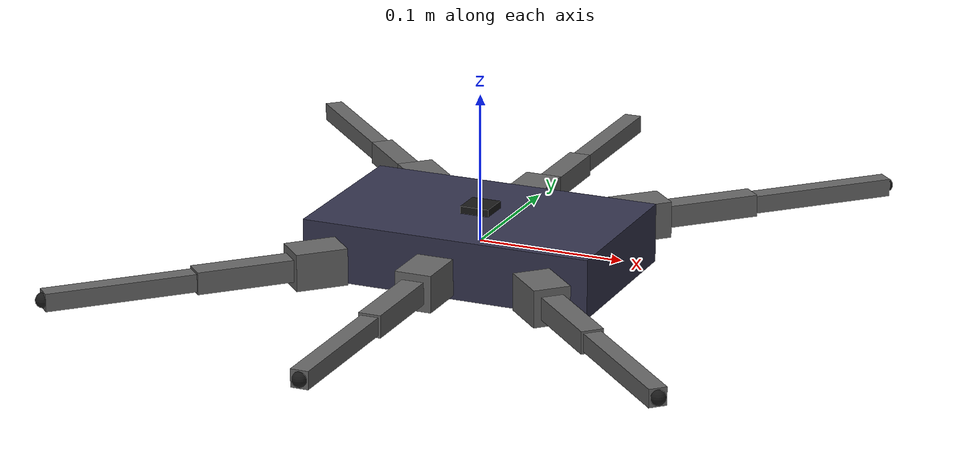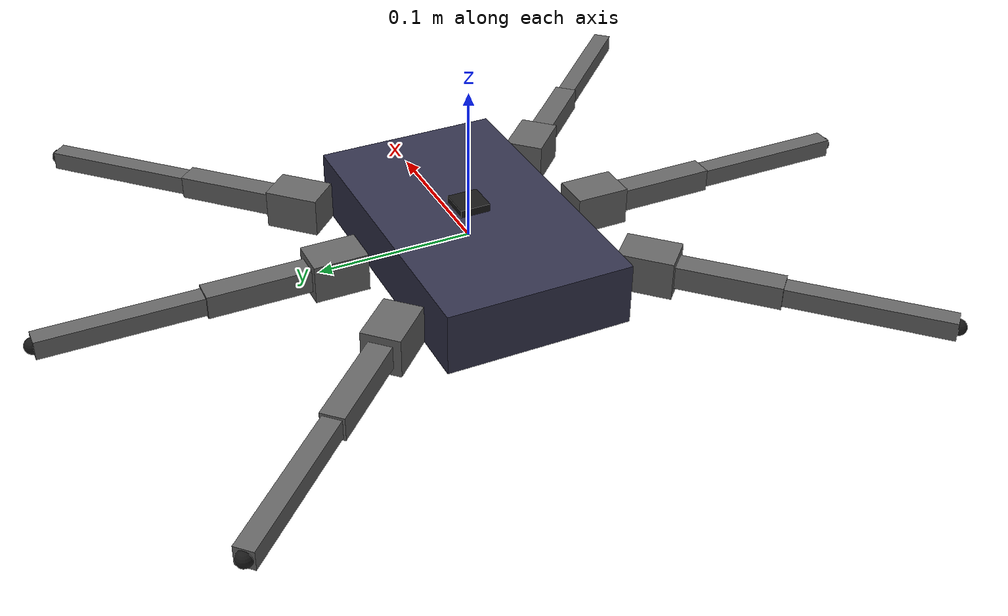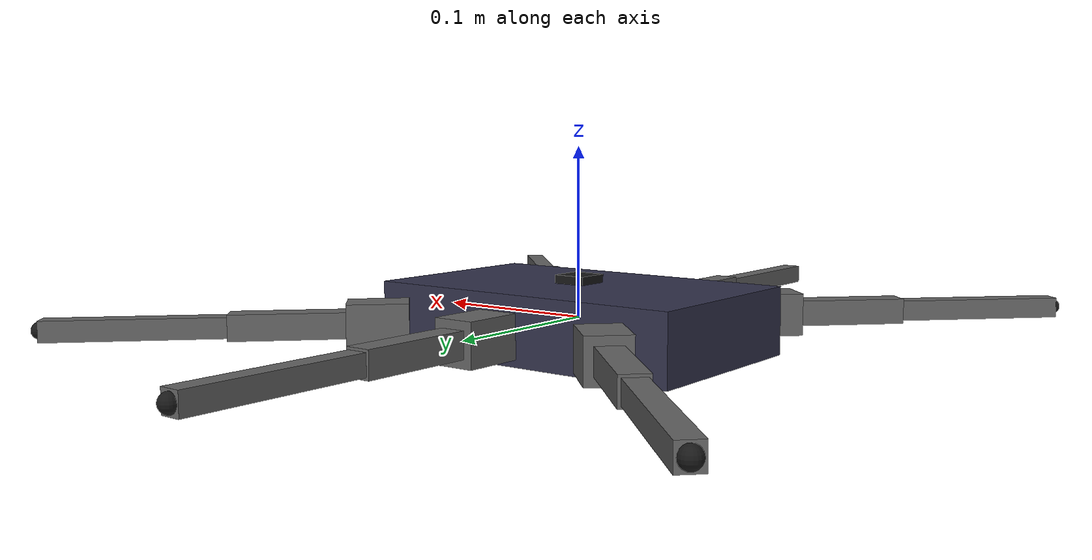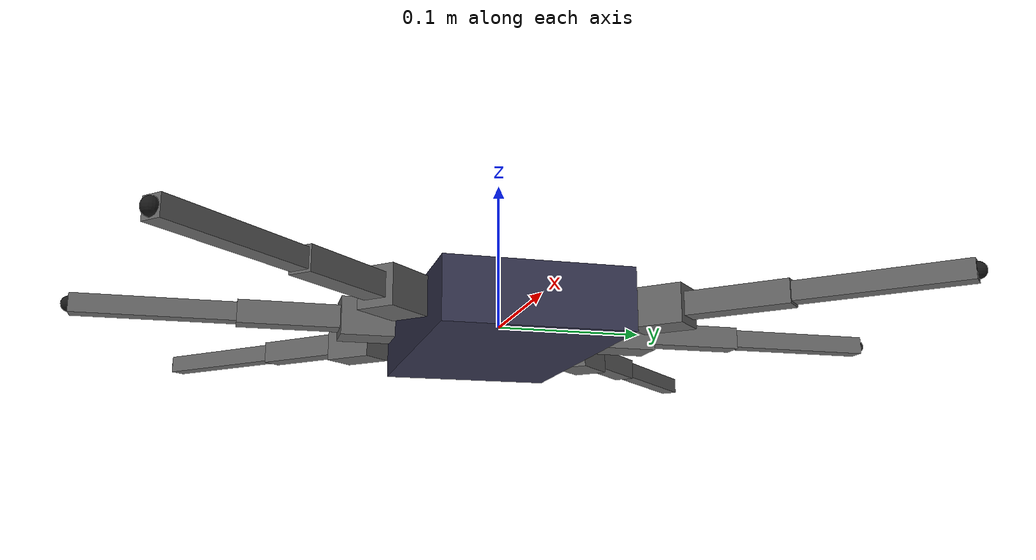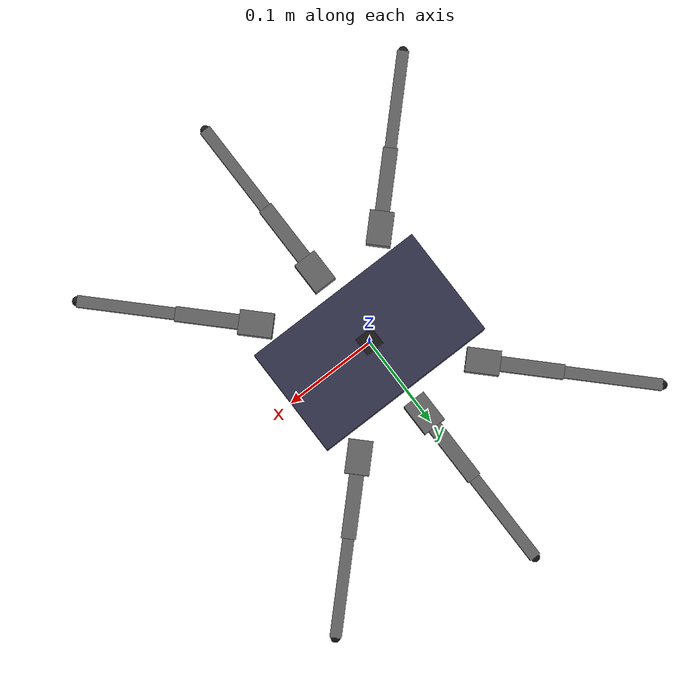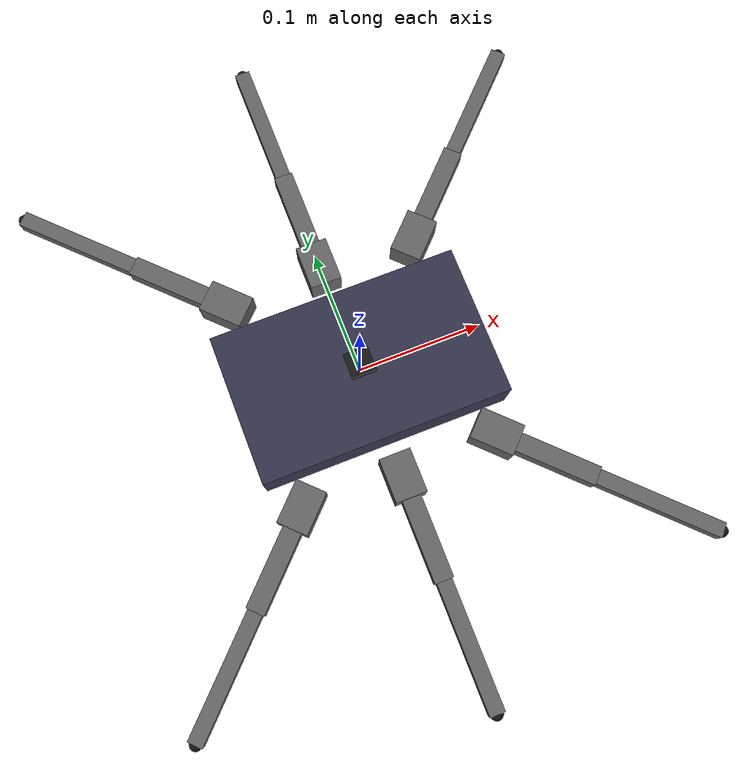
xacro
<?xml version="1.0"?>
<robot xmlns:xacro="http://www.ros.org/wiki/xacro" name="hexapod">

  <!-- Properties -->
  <xacro:property name="body_length" value="0.20"/>
  <xacro:property name="body_width" value="0.12"/>
  <xacro:property name="body_height" value="0.04"/>
  <xacro:property name="body_mass" value="0.8"/>

  <!-- Coxa (hip) dimensions -->
  <xacro:property name="coxa_length" value="0.035"/>
  <xacro:property name="coxa_width" value="0.025"/>
  <xacro:property name="coxa_mass" value="0.05"/>

  <!-- Femur (thigh) dimensions -->
  <xacro:property name="femur_length" value="0.065"/>
  <xacro:property name="femur_width" value="0.015"/>
  <xacro:property name="femur_mass" value="0.08"/>

  <!-- Tibia (shin) dimensions -->
  <xacro:property name="tibia_length" value="0.100"/>
  <xacro:property name="tibia_width" value="0.012"/>
  <xacro:property name="tibia_mass" value="0.06"/>

  <!-- Materials -->
  <material name="body_color">
    <color rgba="0.2 0.2 0.3 1.0"/>
  </material>
  <material name="leg_color">
    <color rgba="0.4 0.4 0.4 1.0"/>
  </material>
  <material name="joint_color">
    <color rgba="0.1 0.1 0.1 1.0"/>
  </material>

  <!-- Base Link -->
  <link name="base_link">
    <visual>
      <origin xyz="0 0 0" rpy="0 0 0"/>
      <geometry>
        <box size="${body_length} ${body_width} ${body_height}"/>
      </geometry>
      <material name="body_color"/>
    </visual>
    <collision>
      <origin xyz="0 0 0" rpy="0 0 0"/>
      <geometry>
        <box size="${body_length} ${body_width} ${body_height}"/>
      </geometry>
    </collision>
    <inertial>
      <origin xyz="0 0 0" rpy="0 0 0"/>
      <mass value="${body_mass}"/>
      <inertia ixx="${body_mass*(body_width*body_width + body_height*body_height)/12}"
               iyy="${body_mass*(body_length*body_length + body_height*body_height)/12}"
               izz="${body_mass*(body_length*body_length + body_width*body_width)/12}"
               ixy="0" ixz="0" iyz="0"/>
    </inertial>
  </link>

  <!-- IMU Link -->
  <link name="imu_link">
    <visual>
      <origin xyz="0 0 0" rpy="0 0 0"/>
      <geometry>
        <box size="0.02 0.02 0.005"/>
      </geometry>
      <material name="joint_color"/>
    </visual>
  </link>

  <joint name="imu_joint" type="fixed">
    <parent link="base_link"/>
    <child link="imu_link"/>
    <origin xyz="0 0 ${body_height/2 + 0.003}" rpy="0 0 0"/>
  </joint>

  <!-- Leg Macro -->
  <xacro:macro name="leg" params="leg_id side front x y angle">
    <!-- Coxa joint (hip rotation) -->
    <link name="leg_${leg_id}_coxa">
      <visual>
        <origin xyz="${coxa_length/2} 0 0" rpy="0 0 0"/>
        <geometry>
          <box size="${coxa_length} ${coxa_width} ${coxa_width}"/>
        </geometry>
        <material name="leg_color"/>
      </visual>
      <collision>
        <origin xyz="${coxa_length/2} 0 0" rpy="0 0 0"/>
        <geometry>
          <box size="${coxa_length} ${coxa_width} ${coxa_width}"/>
        </geometry>
      </collision>
      <inertial>
        <origin xyz="${coxa_length/2} 0 0" rpy="0 0 0"/>
        <mass value="${coxa_mass}"/>
        <inertia ixx="${coxa_mass*(coxa_width*coxa_width + coxa_width*coxa_width)/12}"
                 iyy="${coxa_mass*(coxa_length*coxa_length + coxa_width*coxa_width)/12}"
                 izz="${coxa_mass*(coxa_length*coxa_length + coxa_width*coxa_width)/12}"
                 ixy="0" ixz="0" iyz="0"/>
      </inertial>
    </link>

    <joint name="leg_${leg_id}_coxa_joint" type="revolute">
      <parent link="base_link"/>
      <child link="leg_${leg_id}_coxa"/>
      <origin xyz="${x} ${y} 0" rpy="0 0 ${angle}"/>
      <axis xyz="0 0 1"/>
      <limit lower="-1.57" upper="1.57" effort="2.0" velocity="8.0"/>
    </joint>

    <!-- Femur (thigh) -->
    <link name="leg_${leg_id}_femur">
      <visual>
        <origin xyz="${femur_length/2} 0 0" rpy="0 0 0"/>
        <geometry>
          <box size="${femur_length} ${femur_width} ${femur_width}"/>
        </geometry>
        <material name="leg_color"/>
      </visual>
      <collision>
        <origin xyz="${femur_length/2} 0 0" rpy="0 0 0"/>
        <geometry>
          <box size="${femur_length} ${femur_width} ${femur_width}"/>
        </geometry>
      </collision>
      <inertial>
        <origin xyz="${femur_length/2} 0 0" rpy="0 0 0"/>
        <mass value="${femur_mass}"/>
        <inertia ixx="${femur_mass*(femur_width*femur_width + femur_width*femur_width)/12}"
                 iyy="${femur_mass*(femur_length*femur_length + femur_width*femur_width)/12}"
                 izz="${femur_mass*(femur_length*femur_length + femur_width*femur_width)/12}"
                 ixy="0" ixz="0" iyz="0"/>
      </inertial>
    </link>

    <joint name="leg_${leg_id}_femur_joint" type="revolute">
      <parent link="leg_${leg_id}_coxa"/>
      <child link="leg_${leg_id}_femur"/>
      <origin xyz="${coxa_length} 0 0" rpy="0 0 0"/>
      <axis xyz="0 1 0"/>
      <limit lower="-1.57" upper="1.57" effort="2.0" velocity="8.0"/>
    </joint>

    <!-- Tibia (shin) -->
    <link name="leg_${leg_id}_tibia">
      <visual>
        <origin xyz="${tibia_length/2} 0 0" rpy="0 0 0"/>
        <geometry>
          <box size="${tibia_length} ${tibia_width} ${tibia_width}"/>
        </geometry>
        <material name="leg_color"/>
      </visual>
      <collision>
        <origin xyz="${tibia_length/2} 0 0" rpy="0 0 0"/>
        <geometry>
          <box size="${tibia_length} ${tibia_width} ${tibia_width}"/>
        </geometry>
      </collision>
      <inertial>
        <origin xyz="${tibia_length/2} 0 0" rpy="0 0 0"/>
        <mass value="${tibia_mass}"/>
        <inertia ixx="${tibia_mass*(tibia_width*tibia_width + tibia_width*tibia_width)/12}"
                 iyy="${tibia_mass*(tibia_length*tibia_length + tibia_width*tibia_width)/12}"
                 izz="${tibia_mass*(tibia_length*tibia_length + tibia_width*tibia_width)/12}"
                 ixy="0" ixz="0" iyz="0"/>
      </inertial>
    </link>

    <joint name="leg_${leg_id}_tibia_joint" type="revolute">
      <parent link="leg_${leg_id}_femur"/>
      <child link="leg_${leg_id}_tibia"/>
      <origin xyz="${femur_length} 0 0" rpy="0 0 0"/>
      <axis xyz="0 1 0"/>
      <limit lower="-2.0" upper="0.5" effort="2.0" velocity="8.0"/>
    </joint>

    <!-- Foot tip -->
    <link name="leg_${leg_id}_foot">
      <visual>
        <origin xyz="0 0 0" rpy="0 0 0"/>
        <geometry>
          <sphere radius="0.005"/>
        </geometry>
        <material name="joint_color"/>
      </visual>
      <collision>
        <origin xyz="0 0 0" rpy="0 0 0"/>
        <geometry>
          <sphere radius="0.005"/>
        </geometry>
      </collision>
    </link>

    <joint name="leg_${leg_id}_foot_joint" type="fixed">
      <parent link="leg_${leg_id}_tibia"/>
      <child link="leg_${leg_id}_foot"/>
      <origin xyz="${tibia_length} 0 0" rpy="0 0 0"/>
    </joint>
  </xacro:macro>

  <!-- Define 6 legs -->
  <!-- Leg 0: Front Left -->
  <xacro:leg leg_id="0" side="left" front="true"
             x="${body_length/3}" y="${body_width/2 + coxa_width/2}" angle="0.785"/>

  <!-- Leg 1: Middle Left -->
  <xacro:leg leg_id="1" side="left" front="false"
             x="0" y="${body_width/2 + coxa_width/2}" angle="1.571"/>

  <!-- Leg 2: Rear Left -->
  <xacro:leg leg_id="2" side="left" front="false"
             x="${-body_length/3}" y="${body_width/2 + coxa_width/2}" angle="2.356"/>

  <!-- Leg 3: Rear Right -->
  <xacro:leg leg_id="3" side="right" front="false"
             x="${-body_length/3}" y="${-body_width/2 - coxa_width/2}" angle="-2.356"/>

  <!-- Leg 4: Middle Right -->
  <xacro:leg leg_id="4" side="right" front="false"
             x="0" y="${-body_width/2 - coxa_width/2}" angle="-1.571"/>

  <!-- Leg 5: Front Right -->
  <xacro:leg leg_id="5" side="right" front="true"
             x="${body_length/3}" y="${-body_width/2 - coxa_width/2}" angle="-0.785"/>

</robot>
